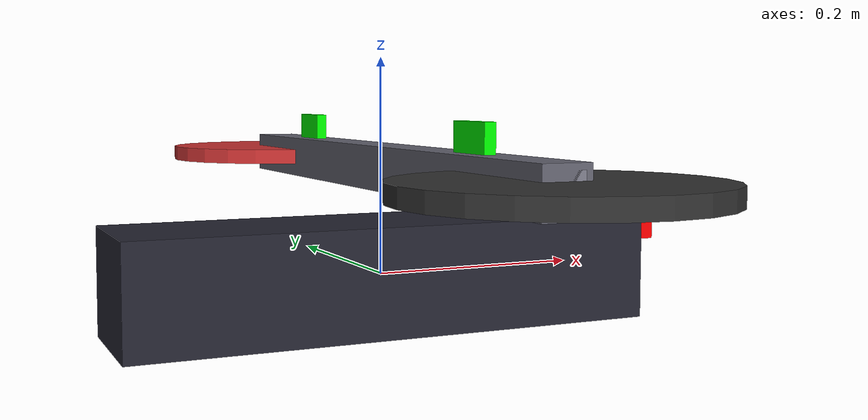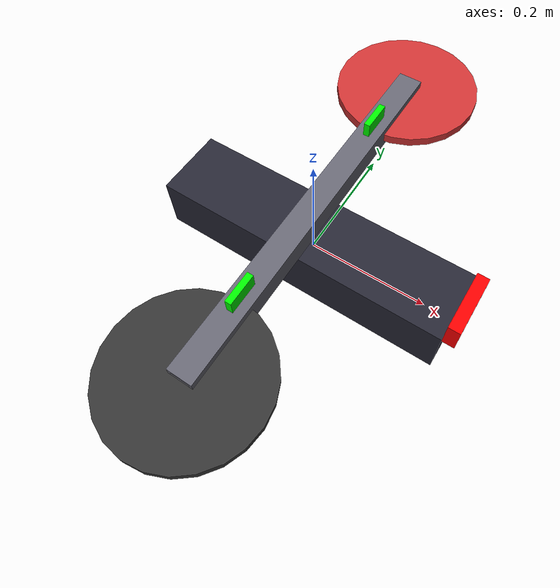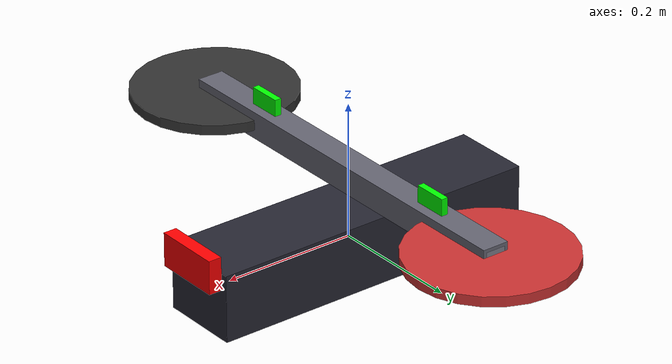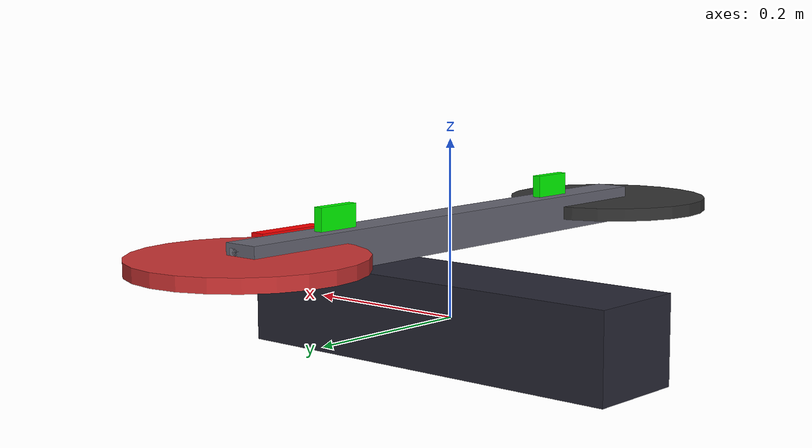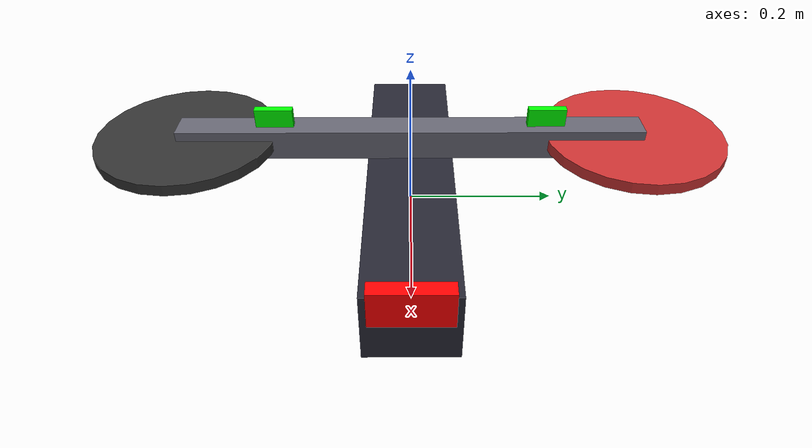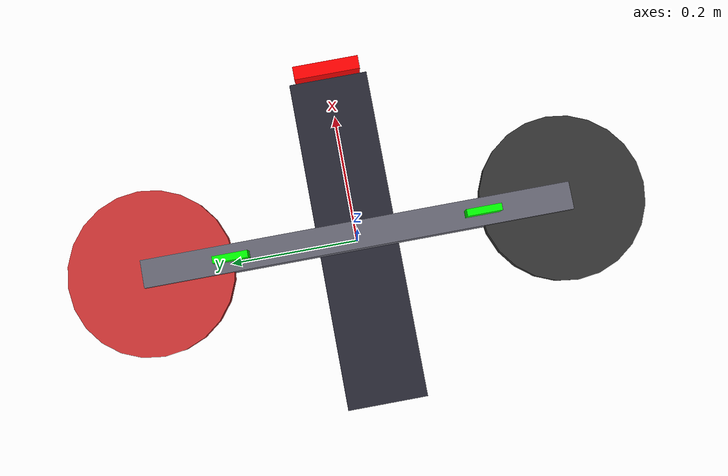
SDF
<?xml version="1.0" ?>
<sdf version="1.9">
  <model name="osprai">
    <pose>0 0 0 0 0 0</pose>

    <!-- ===================== FUSELAGE ===================== -->
    <link name="base_link">
      <inertial>
        <mass>1.0</mass>
        <inertia>
          <ixx>0.0020</ixx>
          <iyy>0.0217</iyy>
          <izz>0.0220</izz>
          <ixy>0</ixy>
          <ixz>0</ixz>
          <iyz>0</iyz>
        </inertia>
      </inertial>
      <visual name="body_visual">
        <geometry>
          <box>
            <size>0.50 0.12 0.10</size>
          </box>
        </geometry>
        <material>
          <ambient>0.1 0.1 0.12 1</ambient>
          <diffuse>0.15 0.15 0.2 1</diffuse>
        </material>
      </visual>
      <collision name="body_collision">
        <geometry><box><size>0.50 0.12 0.10</size></box></geometry>
      </collision>
      <!-- Spar drawn across the top so the geometry reads as an Osprey. -->
      <visual name="spar_visual">
        <pose>0 0 0.10 0 0 0</pose>
        <geometry>
          <box>
            <size>0.04 0.62 0.04</size>
          </box>
        </geometry>
        <material>
          <diffuse>0.4 0.4 0.45 1</diffuse>
        </material>
      </visual>
      <visual name="front_direction_marker">
        <pose>0.26 0 0.05 0 0 0</pose>
        <geometry>
          <box>
            <size>0.02 0.10 0.05</size>
          </box>
        </geometry>
        <material>
          <ambient>1 0 0 1</ambient>
          <diffuse>1 0 0 1</diffuse>
        </material>
      </visual>
      <sensor name="imu_sensor" type="imu">
        <always_on>1</always_on>
        <update_rate>250</update_rate>
        <topic>osprai/imu</topic>
        <imu>
          <orientation_reference_frame>
            <localization>CUSTOM</localization>
            <custom_rpy parent_frame="world">0 0 0</custom_rpy>
          </orientation_reference_frame>
        </imu>
      </sensor>
      <!-- ===== STEREO CAMERA PAIR (forward, baseline 0.12 m) ===== -->
      <!-- Both cameras are coplanar and parallel (face +X); the baseline is the
           Y separation (0.06 - (-0.06) = 0.12 m), which you'll need for the
           stereo disparity-to-depth math. -->
      <sensor name="camera_left" type="camera">
        <pose>0.26 0.06 0 0 0 0</pose>
        <always_on>1</always_on>
        <update_rate>30</update_rate>
        <topic>osprai/cameras/left</topic>
        <gz_frame_id>camera_left</gz_frame_id>
        <camera>
          <horizontal_fov>1.047</horizontal_fov>
          <image>
            <width>1280</width>
            <height>720</height>
          </image>
          <clip>
            <near>0.1</near>
            <far>300</far>
          </clip>
        </camera>
      </sensor>
      <sensor name="camera_right" type="camera">
        <pose>0.26 -0.06 0 0 0 0</pose>
        <always_on>1</always_on>
        <update_rate>30</update_rate>
        <topic>osprai/cameras/right</topic>
        <gz_frame_id>camera_right</gz_frame_id>
        <camera>
          <horizontal_fov>1.047</horizontal_fov>
          <image>
            <width>1280</width>
            <height>720</height>
          </image>
          <clip>
            <near>0.1</near>
            <far>300</far>
          </clip>
        </camera>
      </sensor>
      <!-- ===== 3D LIDAR (16-beam, 360 deg horizontal, mounted on top) ===== -->
      <sensor name="lidar" type="gpu_lidar">
        <pose>0 0 0.18 0 0 0</pose>
        <always_on>1</always_on>
        <update_rate>10</update_rate>
        <visualize>true</visualize>
        <topic>osprai/lidar</topic>
        <gz_frame_id>lidar</gz_frame_id>
        <lidar>
          <scan>
            <horizontal>
              <samples>360</samples>
              <resolution>1</resolution>
              <min_angle>-3.14159</min_angle>
              <max_angle>3.14159</max_angle>
            </horizontal>
            <vertical>
              <samples>16</samples>
              <resolution>1</resolution>
              <min_angle>-0.261799</min_angle>
              <max_angle>0.261799</max_angle>
            </vertical>
          </scan>
          <range>
            <min>0.2</min>
            <max>30.0</max>
            <resolution>0.01</resolution>
          </range>
          <noise>
            <type>gaussian</type>
            <mean>0.0</mean>
            <stddev>0.01</stddev>
          </noise>
        </lidar>
      </sensor>
      <sensor name="navsat" type="navsat">
        <always_on>1</always_on>
        <update_rate>5</update_rate>
        <topic>osprai/gps</topic>
        <gz_frame_id>navsat</gz_frame_id>
      </sensor>
    </link>

    <!-- ===================== LEFT ARM (+Y) ===================== -->
    <link name="arm_left">
      <pose>0 0.18 0.10 0 0 0</pose>
      <inertial>
        <mass>0.05</mass>
        <inertia>
          <ixx>0.0004</ixx>
          <iyy>0.00005</iyy>
          <izz>0.0004</izz>
          <ixy>0</ixy>
          <ixz>0</ixz>
          <iyz>0</iyz>
        </inertia>
      </inertial>
      <visual name="arm_left_visual">
        <geometry>
          <box>
            <size>0.03 0.26 0.03</size>
          </box>
        </geometry>
        <material>
          <diffuse>0.5 0.5 0.55 1</diffuse>
        </material>
      </visual>
      <visual name="arm_left_up_marker">
        <pose>0 0 0.025 0 0 0</pose>
        <geometry>
          <box>
            <size>0.01 0.05 0.04</size>
          </box>
        </geometry>
        <material>
          <ambient>0 1 0 1</ambient>
          <diffuse>0 1 0 1</diffuse>
        </material>
      </visual>
    </link>

    <!-- Tilt joint: rotates the whole arm about Y. Driven to a target angle. -->
    <joint name="tilt_left" type="revolute">
      <parent>base_link</parent>
      <child>arm_left</child>
      <axis>
        <xyz>0 1 0</xyz>
        <limit>
          <lower>-1.57</lower>
          <upper>1.57</upper>
          <velocity>10.0</velocity>
          <effort>1.0</effort>
        </limit>
        <dynamics>
          <damping>0.02</damping>
        </dynamics>
      </axis>
    </joint>

    <link name="rotor_left">
      <pose>0 0.30 0.10 0 0 0</pose>
      <inertial>
        <mass>0.05</mass>
        <inertia>
          <ixx>0.00018</ixx>
          <iyy>0.00018</iyy>
          <izz>0.00036</izz>
          <ixy>0</ixy>
          <ixz>0</ixz>
          <iyz>0</iyz>
        </inertia>
      </inertial>
      <visual name="rotor_left_visual">
        <geometry>
          <cylinder>
            <radius>0.12</radius>
            <length>0.015</length>
            </cylinder>
          </geometry>
        <material>
          <diffuse>0.8 0.2 0.2 1</diffuse>
        </material>
      </visual>
    </link>

    <!-- Spin joint: rotor spins about its local Z; tilts with the arm. -->
    <joint name="spin_left" type="revolute">
      <parent>arm_left</parent>
      <child>rotor_left</child>
      <axis>
        <xyz>0 0 1</xyz>
        <limit>
          <lower>-1e16</lower>
          <upper>1e16</upper>
        </limit>
      </axis>
    </joint>

    <!-- ===================== RIGHT ARM (-Y) ===================== -->
    <link name="arm_right">
      <pose>0 -0.18 0.10 0 0 0</pose>
      <inertial>
        <mass>0.05</mass>
        <inertia>
          <ixx>0.0004</ixx>
          <iyy>0.00005</iyy>
          <izz>0.0004</izz>
          <ixy>0</ixy>
          <ixz>0</ixz>
          <iyz>0</iyz>
        </inertia>
      </inertial>
      <visual name="arm_right_visual">
        <geometry>
          <box>
            <size>0.03 0.26 0.03</size>
          </box>
        </geometry>
        <material>
          <diffuse>0.5 0.5 0.55 1</diffuse>
        </material>
      </visual>
      <visual name="arm_right_up_marker">
        <pose>0 0 0.025 0 0 0</pose>
        <geometry>
          <box>
            <size>0.01 0.05 0.04</size>
          </box>
        </geometry>
        <material>
          <ambient>0 1 0 1</ambient>
          <diffuse>0 1 0 1</diffuse>
        </material>
      </visual>
    </link>
    <joint name="tilt_right" type="revolute">
      <parent>base_link</parent>
      <child>arm_right</child>
      <axis>
        <xyz>0 1 0</xyz>
        <limit>
          <lower>-1.57</lower>
          <upper>1.57</upper>
          <velocity>10.0</velocity>
          <effort>1.0</effort>
        </limit>
        <dynamics>
          <damping>0.02</damping>
        </dynamics>
      </axis>
    </joint>

    <link name="rotor_right">
      <pose>0 -0.30 0.10 0 0 0</pose>
      <inertial>
        <mass>0.05</mass>
        <inertia>
          <ixx>0.00018</ixx>
          <iyy>0.00018</iyy>
          <izz>0.00036</izz>
          <ixy>0</ixy>
          <ixz>0</ixz>
          <iyz>0</iyz>
        </inertia>
      </inertial>
      <visual name="rotor_right_visual">
        <geometry>
          <cylinder>
            <radius>0.12</radius>
            <length>0.015</length>
          </cylinder>
        </geometry>
        <material>
          <diffuse>0.2 0.2 0.2 1</diffuse>
        </material>
      </visual>
    </link>
    <joint name="spin_right" type="revolute">
      <parent>arm_right</parent>
      <child>rotor_right</child>
      <axis>
        <xyz>0 0 1</xyz>
        <limit>
          <lower>-1e16</lower>
          <upper>1e16</upper>
        </limit>
      </axis>
    </joint>

    <!-- ===================== ROTOR THRUST ===================== -->
    <plugin filename="gz-sim-multicopter-motor-model-system"
            name="gz::sim::systems::MulticopterMotorModel">
      <robotNamespace>osprai</robotNamespace>
      <jointName>spin_left</jointName>
      <linkName>rotor_left</linkName>
      <turningDirection>ccw</turningDirection>
      <timeConstantUp>0.0125</timeConstantUp>
      <timeConstantDown>0.025</timeConstantDown>
      <maxRotVelocity>1200.0</maxRotVelocity>
      <motorConstant>1.2e-05</motorConstant>
      <momentConstant>0.016</momentConstant>
      <commandSubTopic>command/motor_setpoints</commandSubTopic>
      <actuator_number>0</actuator_number>
      <rotorDragCoefficient>8.06428e-05</rotorDragCoefficient>
      <rollingMomentCoefficient>1e-06</rollingMomentCoefficient>
      <rotorVelocitySlowdownSim>1</rotorVelocitySlowdownSim>
      <motorType>velocity</motorType>
    </plugin>

    <plugin filename="gz-sim-multicopter-motor-model-system"
            name="gz::sim::systems::MulticopterMotorModel">
      <robotNamespace>osprai</robotNamespace>
      <jointName>spin_right</jointName>
      <linkName>rotor_right</linkName>
      <turningDirection>cw</turningDirection>
      <timeConstantUp>0.0125</timeConstantUp>
      <timeConstantDown>0.025</timeConstantDown>
      <maxRotVelocity>1200.0</maxRotVelocity>
      <motorConstant>1.2e-05</motorConstant>
      <momentConstant>0.016</momentConstant>
      <commandSubTopic>command/motor_setpoints</commandSubTopic>
      <actuator_number>1</actuator_number>
      <rotorDragCoefficient>8.06428e-05</rotorDragCoefficient>
      <rollingMomentCoefficient>1e-06</rollingMomentCoefficient>
      <rotorVelocitySlowdownSim>1</rotorVelocitySlowdownSim>
      <motorType>velocity</motorType>
    </plugin>

    <!-- ===================== TILT ACTUATORS ===================== -->
    <plugin filename="gz-sim-joint-position-controller-system"
            name="gz::sim::systems::JointPositionController">
      <joint_name>tilt_left</joint_name>
      <use_actuator_msg>true</use_actuator_msg>
      <actuator_number>0</actuator_number>
      <topic>/osprai/command/motor_setpoints</topic>
      <p_gain>20.0</p_gain>
      <i_gain>0.0</i_gain>
      <d_gain>0.13</d_gain>
      <cmd_max>0.8</cmd_max>
      <cmd_min>-0.8</cmd_min>
    </plugin>

    <plugin filename="gz-sim-joint-position-controller-system"
            name="gz::sim::systems::JointPositionController">
      <joint_name>tilt_right</joint_name>
      <use_actuator_msg>true</use_actuator_msg>
      <actuator_number>1</actuator_number>
      <topic>/osprai/command/motor_setpoints</topic>
      <p_gain>20.0</p_gain>
      <i_gain>0.0</i_gain>
      <d_gain>0.13</d_gain>
      <cmd_max>0.8</cmd_max>
      <cmd_min>-0.8</cmd_min>
    </plugin>

    <plugin filename="gz-sim-odometry-publisher-system"
            name="gz::sim::systems::OdometryPublisher">
      <odom_frame>world</odom_frame>
      <robot_base_frame>osprai</robot_base_frame>
      <dimensions>3</dimensions>
    </plugin>

    <plugin filename="gz-sim-joint-state-publisher-system"
            name="gz::sim::systems::JointStatePublisher">
      <topic>/osprai/joint_state</topic>
      <joint_name>tilt_left</joint_name>
      <joint_name>tilt_right</joint_name>
      <joint_name>spin_left</joint_name>
      <joint_name>spin_right</joint_name>
    </plugin>

  </model>
</sdf>
